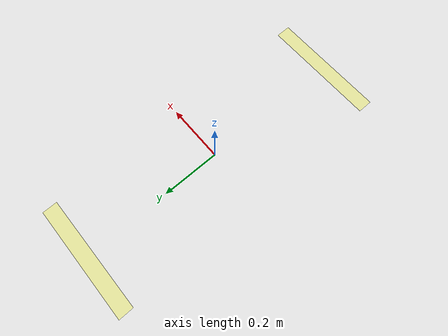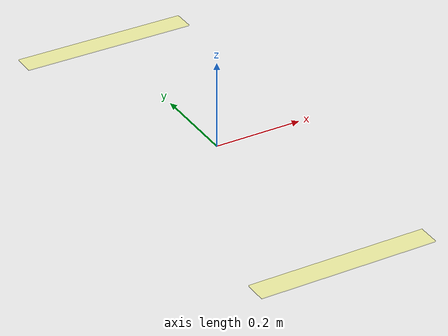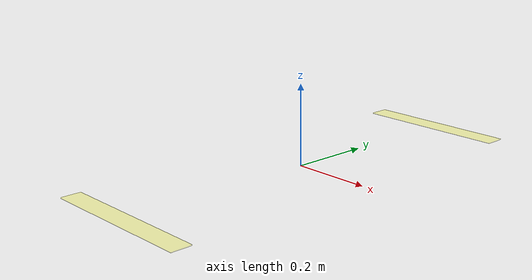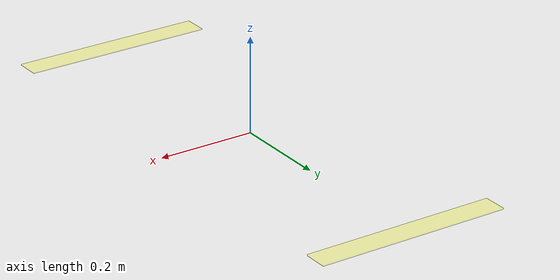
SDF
<?xml version='1.0'?>
<sdf version='1.7'>
  <model name='can_click_indicator'>

    <link name='can_click_indicator_link_left'>
      <inertial>
        <mass>1</mass>
        <inertia>
          <ixx>0.166667</ixx>
          <ixy>0</ixy>
          <ixz>0</ixz>
          <iyy>0.166667</iyy>
          <iyz>0</iyz>
          <izz>0.166667</izz>
        </inertia>
        <pose>0 0 0 0 -0 0</pose>
      </inertial>
      <self_collide>0</self_collide>
      <enable_wind>0</enable_wind>
      <kinematic>0</kinematic>
      <pose>0 -0.5 0 0 -0 0</pose>
      <gravity>0</gravity>
      <visual name='visual'>
        <geometry>
          <box>
            <size>0.40 0.05 0.002</size>
          </box>
        </geometry>
        <material>
          <script>
            <name>Gazebo/Grey</name>
            <uri>file://media/materials/scripts/gazebo.material</uri>
          </script>
          <shader type='pixel'>
            <normal_map>__default__</normal_map>
          </shader>
          <ambient>1 1 0 0</ambient>
          <diffuse>0.7 0.7 0.7 1</diffuse>
          <specular>0.01 0.01 0.01 1</specular>
          <emissive>0 0 0 1</emissive>
        </material>
        <pose>0 0 0 0 -0 0</pose>
        <transparency>0.7</transparency>
        <cast_shadows>1</cast_shadows>
      </visual>
    </link>

    <link name='can_click_indicator_link_right'>
      <inertial>
        <mass>1</mass>
        <inertia>
          <ixx>0.166667</ixx>
          <ixy>0</ixy>
          <ixz>0</ixz>
          <iyy>0.166667</iyy>
          <iyz>0</iyz>
          <izz>0.166667</izz>
        </inertia>
        <pose>0 0 0 0 -0 0</pose>
      </inertial>
      <self_collide>0</self_collide>
      <enable_wind>0</enable_wind>
      <kinematic>0</kinematic>
      <pose>0 0.5 0 0 -0 0</pose>
      <gravity>0</gravity>
      <visual name='visual'>
        <geometry>
          <box>
            <size>0.40 0.05 0.002</size>
          </box>
        </geometry>
        <material>
          <script>
            <name>Gazebo/Grey</name>
            <uri>file://media/materials/scripts/gazebo.material</uri>
          </script>
          <shader type='pixel'>
            <normal_map>__default__</normal_map>
          </shader>
          <ambient>1 1 0 0</ambient>
          <diffuse>0.7 0.7 0.7 1</diffuse>
          <specular>0.01 0.01 0.01 1</specular>
          <emissive>0 0 0 1</emissive>
        </material>
        <pose>0 0 0 0 -0 0</pose>
        <transparency>0.7</transparency>
        <cast_shadows>1</cast_shadows>
      </visual>
    </link>

    <static>0</static>
    <allow_auto_disable>1</allow_auto_disable>
  </model>
</sdf>
